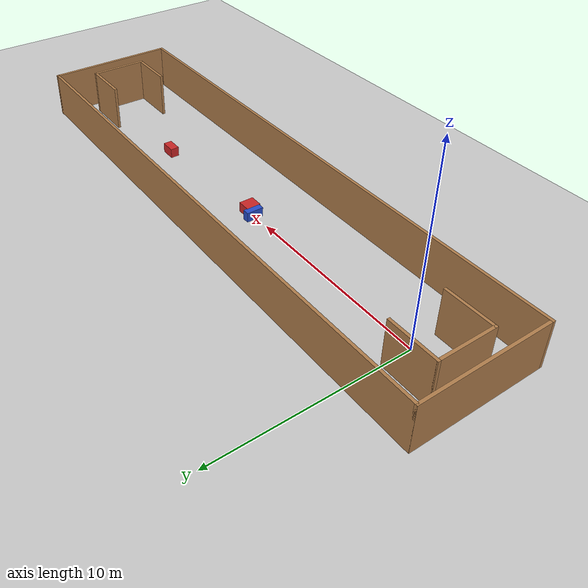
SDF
<sdf version="1.7">
 <world name="default">
  <light name="sun" type="directional">
   <pose>0 0 10 0 -0 0</pose>
   <diffuse>0.8 0.8 0.8 1</diffuse>
   <specular>0.2 0.2 0.2 1</specular>
   <attenuation>
    <range>1000</range>
    <constant>0.9</constant>
    <linear>0.01</linear>
    <quadratic>0.001</quadratic>
   </attenuation>
   <direction>-0.5 0.1 -0.9</direction>
   <spot><inner_angle>0</inner_angle><outer_angle>0</outer_angle><falloff>0</falloff></spot>
  </light>
  <model name="ground_plane">
   <static>1</static>
   <link name="link">
    <collision name="collision">
     <geometry><plane><normal>0 0 1</normal><size>100 100</size></plane></geometry>
     <surface>
      <contact><collide_bitmask>65535</collide_bitmask></contact>
      <friction><ode><mu>100</mu><mu2>50</mu2></ode></friction>
     </surface>
    </collision>
    <visual name="visual">
     <cast_shadows>0</cast_shadows>
     <geometry><plane><normal>0 0 1</normal><size>100 100</size></plane></geometry>
     <material>
      <script><uri>file://media/materials/scripts/gazebo.material</uri><name>Gazebo/Grey</name></script>
     </material>
    </visual>
   </link>
  </model>
  <gravity>0 0 -9.8</gravity>
  <magnetic_field>6e-06 2.3e-05 -4.2e-05</magnetic_field>
  <atmosphere type="adiabatic"/>
  <physics type="ode">
   <max_step_size>0.001</max_step_size>
   <real_time_factor>1</real_time_factor>
   <real_time_update_rate>1000</real_time_update_rate>
  </physics>
  <scene><ambient>0.4 0.4 0.4 1</ambient><background>0.7 0.7 0.7 1</background><shadows>1</shadows></scene>
  <spherical_coordinates>
   <surface_model>EARTH_WGS84</surface_model>
   <latitude_deg>0</latitude_deg>
   <longitude_deg>0</longitude_deg>
   <elevation>0</elevation>
   <heading_deg>0</heading_deg>
  </spherical_coordinates>
  <model name="my_base_walls">
   <link name="Wall_0">
    <collision name="Wall_0_Collision">
     <geometry><box><size>7.15 0.15 2.5</size></box></geometry>
     <pose>0 0 1.25 0 -0 0</pose>
    </collision>
    <visual name="Wall_0_Visual">
     <pose>0 0 1.25 0 -0 0</pose>
     <geometry><box><size>7.15 0.15 2.5</size></box></geometry>
     <material>
      <script><uri>file://media/materials/scripts/gazebo.material</uri><name>Gazebo/Wood</name></script>
      <ambient>1 1 1 1</ambient>
     </material>
     <meta><layer>0</layer></meta>
    </visual>
    <pose>-15 0 0 0 -0 1.5708</pose>
   </link>
   <link name="Wall_10">
    <collision name="Wall_10_Collision">
     <geometry><box><size>2.65 0.15 2.5</size></box></geometry>
     <pose>0 0 1.25 0 -0 0</pose>
    </collision>
    <visual name="Wall_10_Visual">
     <pose>0 0 1.25 0 -0 0</pose>
     <geometry><box><size>2.65 0.15 2.5</size></box></geometry>
     <material>
      <script><uri>file://media/materials/scripts/gazebo.material</uri><name>Gazebo/Wood</name></script>
      <ambient>1 1 1 1</ambient>
     </material>
     <meta><layer>0</layer></meta>
    </visual>
    <pose>-12.75 -1.5 0 0 -0 0</pose>
   </link>
   <link name="Wall_12">
    <collision name="Wall_12_Collision">
     <geometry><box><size>2.65 0.15 2.5</size></box></geometry>
     <pose>0 0 1.25 0 -0 0</pose>
    </collision>
    <visual name="Wall_12_Visual">
     <pose>0 0 1.25 0 -0 0</pose>
     <geometry><box><size>2.65 0.15 2.5</size></box></geometry>
     <material>
      <script><uri>file://media/materials/scripts/gazebo.material</uri><name>Gazebo/Wood</name></script>
      <ambient>1 1 1 1</ambient>
     </material>
     <meta><layer>0</layer></meta>
    </visual>
    <pose>-12.75 1.5 0 0 -0 0</pose>
   </link>
   <link name="Wall_14">
    <collision name="Wall_14_Collision">
     <geometry><box><size>3.15 0.15 2.5</size></box></geometry>
     <pose>0 0 1.25 0 -0 0</pose>
    </collision>
    <visual name="Wall_14_Visual">
     <pose>0 0 1.25 0 -0 0</pose>
     <geometry><box><size>3.15 0.15 2.5</size></box></geometry>
     <material>
      <script><uri>file://media/materials/scripts/gazebo.material</uri><name>Gazebo/Wood</name></script>
      <ambient>1 1 1 1</ambient>
     </material>
     <meta><layer>0</layer></meta>
    </visual>
    <pose>14 0 0 0 -0 -1.5708</pose>
   </link>
   <link name="Wall_15">
    <collision name="Wall_15_Collision">
     <geometry><box><size>2.65 0.15 2.5</size></box></geometry>
     <pose>0 0 1.25 0 -0 0</pose>
    </collision>
    <visual name="Wall_15_Visual">
     <pose>0 0 1.25 0 -0 0</pose>
     <geometry><box><size>2.65 0.15 2.5</size></box></geometry>
     <material>
      <script><uri>file://media/materials/scripts/gazebo.material</uri><name>Gazebo/Wood</name></script>
      <ambient>1 1 1 1</ambient>
     </material>
     <meta><layer>0</layer></meta>
    </visual>
    <pose>12.75 -1.5 0 0 -0 3.14159</pose>
   </link>
   <link name="Wall_17">
    <collision name="Wall_17_Collision">
     <geometry><box><size>2.65 0.15 2.5</size></box></geometry>
     <pose>0 0 1.25 0 -0 0</pose>
    </collision>
    <visual name="Wall_17_Visual">
     <pose>0 0 1.25 0 -0 0</pose>
     <geometry><box><size>2.65 0.15 2.5</size></box></geometry>
     <material>
      <script><uri>file://media/materials/scripts/gazebo.material</uri><name>Gazebo/Wood</name></script>
      <ambient>1 1 1 1</ambient>
     </material>
     <meta><layer>0</layer></meta>
    </visual>
    <pose>12.75 1.5 0 0 -0 3.14159</pose>
   </link>
   <link name="Wall_2">
    <collision name="Wall_2_Collision">
     <geometry><box><size>30.15 0.15 2.5</size></box></geometry>
     <pose>0 0 1.25 0 -0 0</pose>
    </collision>
    <visual name="Wall_2_Visual">
     <pose>0 0 1.25 0 -0 0</pose>
     <geometry><box><size>30.15 0.15 2.5</size></box></geometry>
     <material>
      <script><uri>file://media/materials/scripts/gazebo.material</uri><name>Gazebo/Wood</name></script>
      <ambient>1 1 1 1</ambient>
     </material>
     <meta><layer>0</layer></meta>
    </visual>
    <pose>-0 -3.5 0 0 -0 0</pose>
   </link>
   <link name="Wall_4">
    <collision name="Wall_4_Collision">
     <geometry><box><size>30.15 0.15 2.5</size></box></geometry>
     <pose>0 0 1.25 0 -0 0</pose>
    </collision>
    <visual name="Wall_4_Visual">
     <pose>0 0 1.25 0 -0 0</pose>
     <geometry><box><size>30.15 0.15 2.5</size></box></geometry>
     <material>
      <script><uri>file://media/materials/scripts/gazebo.material</uri><name>Gazebo/Wood</name></script>
      <ambient>1 1 1 1</ambient>
     </material>
     <meta><layer>0</layer></meta>
    </visual>
    <pose>-0 3.5 0 0 -0 0</pose>
   </link>
   <link name="Wall_6">
    <collision name="Wall_6_Collision">
     <geometry><box><size>7.15 0.15 2.5</size></box></geometry>
     <pose>0 0 1.25 0 -0 0</pose>
    </collision>
    <visual name="Wall_6_Visual">
     <pose>0 0 1.25 0 -0 0</pose>
     <geometry><box><size>7.15 0.15 2.5</size></box></geometry>
     <material>
      <script><uri>file://media/materials/scripts/gazebo.material</uri><name>Gazebo/Wood</name></script>
      <ambient>1 1 1 1</ambient>
     </material>
     <meta><layer>0</layer></meta>
    </visual>
    <pose>15 0 0 0 -0 -1.5708</pose>
   </link>
   <link name="Wall_9">
    <collision name="Wall_9_Collision">
     <geometry><box><size>3.15 0.15 2.5</size></box></geometry>
     <pose>0 0 1.25 0 -0 0</pose>
    </collision>
    <visual name="Wall_9_Visual">
     <pose>0 0 1.25 0 -0 0</pose>
     <geometry><box><size>3.15 0.15 2.5</size></box></geometry>
     <material>
      <script><uri>file://media/materials/scripts/gazebo.material</uri><name>Gazebo/Wood</name></script>
      <ambient>1 1 1 1</ambient>
     </material>
     <meta><layer>0</layer></meta>
    </visual>
    <pose>-14 0 0 0 -0 -1.5708</pose>
   </link>
   <static>1</static>
   <pose>11.5 0 0 0 -0 0</pose>
  </model>
  <model name="moving_box_1">
   <pose>11.512747636686557 -0.054600917136464755 0 0 0 0</pose>
   <link name="link">
    <collision name="collision">
     <geometry><box><size>0.6904980787585622 0.7755017392135721 1</size></box></geometry>
     <surface><friction><ode><mu>0.1</mu><mu2>0.1</mu2></ode></friction></surface>
    </collision>
    <visual name="visual">
     <geometry><box><size>0.6904980787585622 0.7755017392135721 1</size></box></geometry>
     <material>
      <script><uri>file://media/materials/scripts/gazebo.material</uri><name>Gazebo/Red</name></script>
     </material>
    </visual>
   </link>
   <plugin name="move_box_plugin_1" filename="/home/otonom/fgm_ws/devel/lib/libmove_box_plugin.so">
    <velocity>0.12631811246267016 0.2061501805506192 0</velocity>
   </plugin>
  </model>
  <model name="moving_box_2">
   <pose>18.650223293209887 0.40119401325893556 0 0 0 0</pose>
   <link name="link">
    <collision name="collision">
     <geometry><box><size>0.8151617979077705 0.46692834631178004 1</size></box></geometry>
     <surface><friction><ode><mu>0.1</mu><mu2>0.1</mu2></ode></friction></surface>
    </collision>
    <visual name="visual">
     <geometry><box><size>0.8151617979077705 0.46692834631178004 1</size></box></geometry>
     <material>
      <script><uri>file://media/materials/scripts/gazebo.material</uri><name>Gazebo/Red</name></script>
     </material>
    </visual>
   </link>
   <plugin name="move_box_plugin_2" filename="/home/otonom/fgm_ws/devel/lib/libmove_box_plugin.so">
    <velocity>0.0909890165320974 -0.07699635880512123 0</velocity>
   </plugin>
  </model>
  <model name="moving_box_3">
   <pose>11.020745434741677 0.08316039885508264 0 0 0 0</pose>
   <link name="link">
    <collision name="collision">
     <geometry><box><size>0.3476274391451599 0.923142837763324 1</size></box></geometry>
     <surface><friction><ode><mu>0.1</mu><mu2>0.1</mu2></ode></friction></surface>
    </collision>
    <visual name="visual">
     <geometry><box><size>0.3476274391451599 0.923142837763324 1</size></box></geometry>
     <material>
      <script><uri>file://media/materials/scripts/gazebo.material</uri><name>Gazebo/Blue</name></script>
     </material>
    </visual>
   </link>
   <plugin name="move_box_plugin_3" filename="/home/otonom/fgm_ws/devel/lib/libmove_box_plugin.so">
    <velocity>0 0 0</velocity>
   </plugin>
  </model>
 </world>
</sdf>
